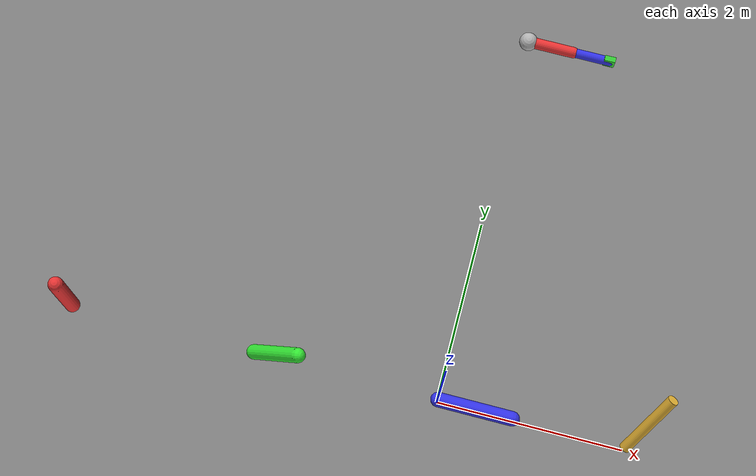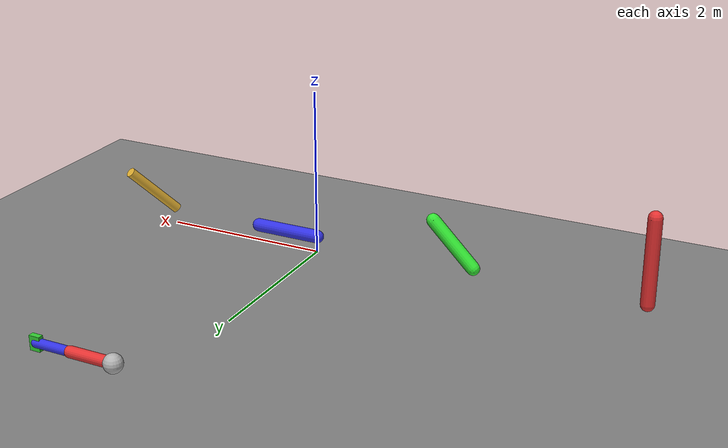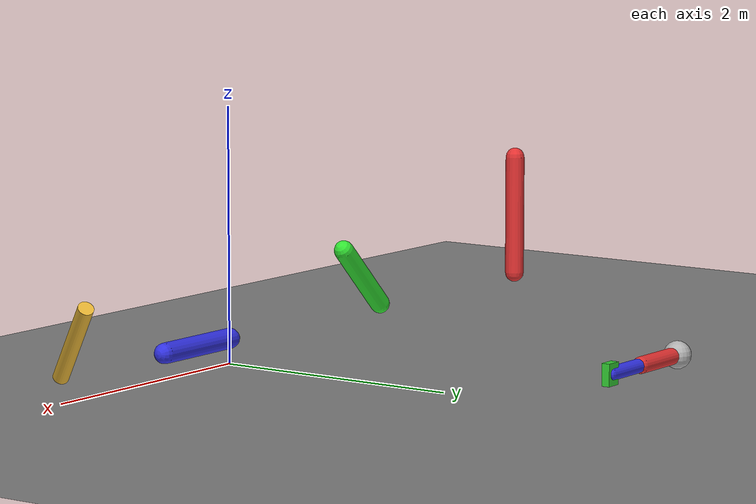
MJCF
<!-- fromto属性演示: 用两点定义几何体的位置、长度和方向 -->
<mujoco model="fromto_demo">
    <compiler angle="radian"/>
    <option timestep="0.002" gravity="0 0 -9.81"/>

    <visual>
        <global realtime="1"/>
        <quality shadowsize="1024"/>
        <headlight diffuse="1 1 1" specular="0.5 0.5 0.5" active="1"/>
    </visual>

    <asset>
        <texture name="grid" type="2d" builtin="checker" width="512" height="512"
                 rgb1=".2 .2 .2" rgb2=".8 .8 .8"/>
        <material name="grid" texture="grid"/>
    </asset>

    <!--
    fromto="x1 y1 z1  x2 y2 z2"
    几何体的Z轴正方向 = point2 → point1
    几何体的长度 = 两点之间的距离
    同时定义了: 位置、长度、旋转
    -->
    <worldbody>
        <geom name="floor" type="plane" size="20 20 .01" material="grid" condim="3"/>

        <!-- 垂直向上的胶囊体 -->
        <body pos="-4 0 .2">
            <geom type="capsule" size="0.08" fromto="0 0 0  0 0 1"
                  rgba=".9 .2 .2 1"/>
        </body>

        <!-- 45度倾斜的胶囊体 -->
        <body pos="-2 0 .2">
            <geom type="capsule" size="0.08" fromto="0 0 0  0.5 0 0.5"
                  rgba=".2 .9 .2 1"/>
        </body>

        <!-- 水平放置的胶囊体 -->
        <body pos="0 0 .2">
            <geom type="capsule" size="0.08" fromto="0 0 0  0.8 0 0"
                  rgba=".2 .2 .9 1"/>
        </body>

        <!-- 用fromto做圆柱体连接两个点 -->
        <body pos="2 0 .2">
            <geom type="cylinder" size="0.06" fromto="0 0 0  0.3 0.5 0.6"
                  rgba=".9 .7 .2 1"/>
        </body>

        <!-- 对比: 用pos+size+euler方式实现同样效果更繁琐 -->
        <!-- fromto一个属性 = pos + euler + size三个属性 -->

        <!-- 实际应用: 用fromto构建简单的机械臂结构 -->
        <body pos="0 4 0.5">
            <freejoint/>
            <geom type="sphere" size="0.1" rgba=".7 .7 .7 1"/>
            <!-- 上臂 -->
            <body pos="0 0 0">
                <geom type="capsule" size="0.06" fromto="0 0 0  0.5 0 0"
                      rgba=".9 .2 .2 1"/>
                <!-- 前臂 -->
                <body pos="0.5 0 0">
                    <geom type="capsule" size="0.05" fromto="0 0 0  0.4 0 0"
                          rgba=".2 .2 .9 1"/>
                    <body pos="0.4 0 0">
                        <geom type="box" size="0.06 0.03 0.08" rgba=".2 .8 .2 1"/>
                    </body>
                </body>
            </body>
        </body>
    </worldbody>
</mujoco>
